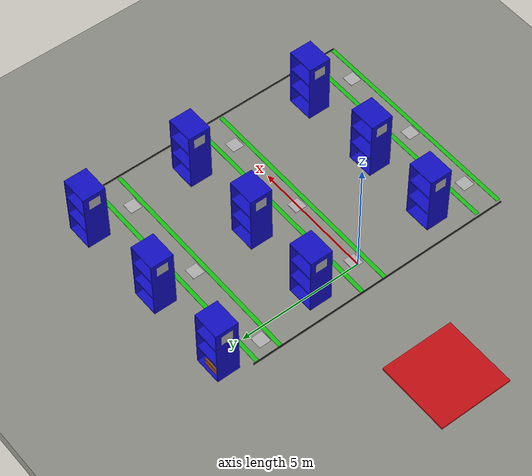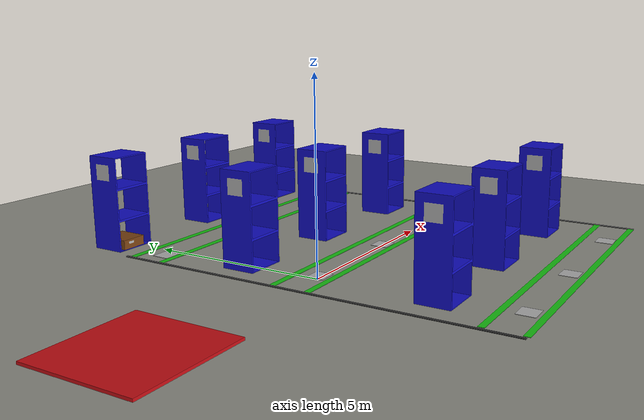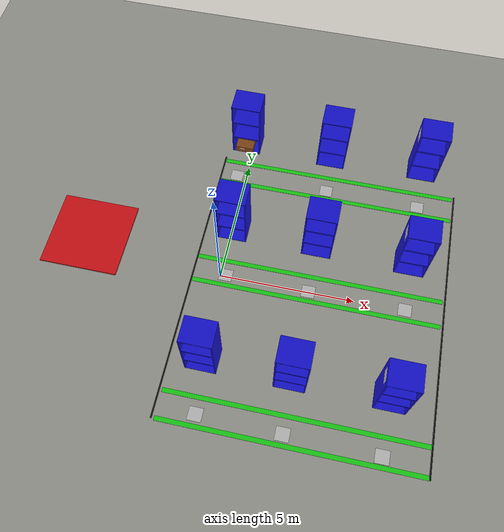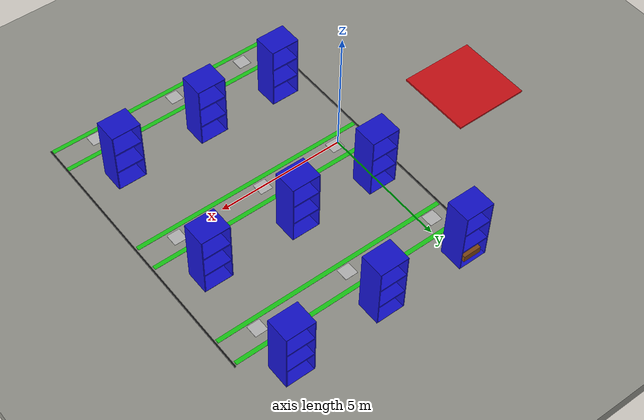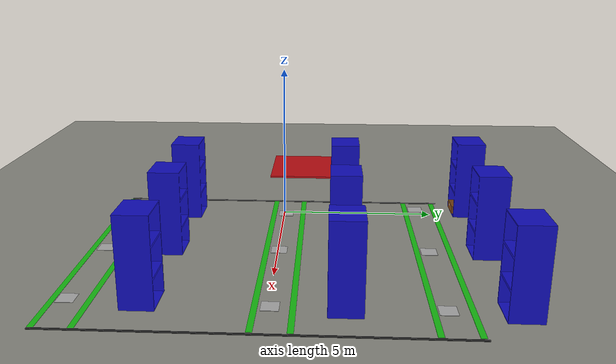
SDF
<sdf version="1.7">
 <world name="default">
  <light name="sun" type="directional">
   <pose>0 0 10 0 -0 0</pose>
   <diffuse>0.8 0.8 0.8 1</diffuse>
   <specular>0.2 0.2 0.2 1</specular>
   <attenuation>
    <range>1000</range>
    <constant>0.9</constant>
    <linear>0.01</linear>
    <quadratic>0.001</quadratic>
   </attenuation>
   <direction>-0.5 0.1 -0.9</direction>
   <spot><inner_angle>0</inner_angle><outer_angle>0</outer_angle><falloff>0</falloff></spot>
  </light>
  <model name="ground_plane">
   <static>1</static>
   <link name="link">
    <collision name="collision">
     <geometry><plane><normal>0 0 1</normal><size>100 100</size></plane></geometry>
     <surface>
      <contact><collide_bitmask>65535</collide_bitmask></contact>
      <friction><ode><mu>100</mu><mu2>50</mu2></ode></friction>
     </surface>
    </collision>
    <visual name="visual">
     <cast_shadows>0</cast_shadows>
     <geometry><plane><normal>0 0 1</normal><size>100 100</size></plane></geometry>
     <material>
      <script><uri>file://media/materials/scripts/gazebo.material</uri><name>Gazebo/Grey</name></script>
     </material>
    </visual>
   </link>
  </model>
  <gravity>0 0 -9.8</gravity>
  <magnetic_field>6e-06 2.3e-05 -4.2e-05</magnetic_field>
  <atmosphere type="adiabatic"/>
  <physics type="ode">
   <max_step_size>0.001</max_step_size>
   <real_time_factor>1</real_time_factor>
   <real_time_update_rate>1000</real_time_update_rate>
  </physics>
  <scene><ambient>0.4 0.4 0.4 1</ambient><background>0.7 0.7 0.7 1</background><shadows>1</shadows></scene>
  <spherical_coordinates>
   <surface_model>EARTH_WGS84</surface_model>
   <latitude_deg>0</latitude_deg>
   <longitude_deg>0</longitude_deg>
   <elevation>0</elevation>
   <heading_deg>0</heading_deg>
  </spherical_coordinates>
  <model name="floor">
   <link name="link_0">
    <inertial>
     <mass>1</mass>
     <inertia>
      <ixx>0.166667</ixx>
      <ixy>0</ixy>
      <ixz>0</ixz>
      <iyy>0.166667</iyy>
      <iyz>0</iyz>
      <izz>0.166667</izz>
     </inertia>
    </inertial>
    <visual name="visual">
     <geometry><mesh><uri>model://floor/resource/floor.dae</uri><scale>1 1 1</scale></mesh></geometry>
    </visual>
    <collision name="collision">
     <geometry><mesh><uri>model://floor/resource/floor.dae</uri><scale>1 1 1</scale></mesh></geometry>
     <surface>
      <friction>
       <ode><mu>1</mu><mu2>1</mu2><fdir1>0 0 0</fdir1><slip1>0</slip1><slip2>0</slip2></ode>
       <torsional>
        <coefficient>1</coefficient>
        <patch_radius>0</patch_radius>
        <surface_radius>0</surface_radius>
        <use_patch_radius>1</use_patch_radius>
        <ode><slip>0</slip></ode>
       </torsional>
      </friction>
      <bounce><restitution_coefficient>0</restitution_coefficient><threshold>1e+06</threshold></bounce>
      <contact>
       <collide_without_contact>0</collide_without_contact>
       <collide_without_contact_bitmask>1</collide_without_contact_bitmask>
       <collide_bitmask>1</collide_bitmask>
       <ode>
        <soft_cfm>0</soft_cfm>
        <soft_erp>0.2</soft_erp>
        <kp>1e+13</kp>
        <kd>1</kd>
        <max_vel>0.01</max_vel>
        <min_depth>0</min_depth>
       </ode>
       <bullet>
        <split_impulse>1</split_impulse>
        <split_impulse_penetration_threshold>-0.01</split_impulse_penetration_threshold>
        <soft_cfm>0</soft_cfm>
        <soft_erp>0.2</soft_erp>
        <kp>1e+13</kp>
        <kd>1</kd>
       </bullet>
      </contact>
     </surface>
    </collision>
   </link>
   <static>1</static>
   <pose>-7.76872 12.4794 0 0 -0 0</pose>
  </model>
  <model name="drone_pad">
   <link name="link_0">
    <inertial>
     <mass>1</mass>
     <inertia>
      <ixx>0.166667</ixx>
      <ixy>0</ixy>
      <ixz>0</ixz>
      <iyy>0.166667</iyy>
      <iyz>0</iyz>
      <izz>0.166667</izz>
     </inertia>
    </inertial>
    <visual name="visual">
     <geometry><mesh><uri>model://drone_pad/resource/drone_pad.dae</uri><scale>1 1 1</scale></mesh></geometry>
    </visual>
    <collision name="collision">
     <geometry><mesh><uri>model://drone_pad/resource/drone_pad.dae</uri><scale>1 1 1</scale></mesh></geometry>
     <surface>
      <friction>
       <ode><mu>1</mu><mu2>1</mu2><fdir1>0 0 0</fdir1><slip1>0</slip1><slip2>0</slip2></ode>
       <torsional>
        <coefficient>1</coefficient>
        <patch_radius>0</patch_radius>
        <surface_radius>0</surface_radius>
        <use_patch_radius>1</use_patch_radius>
        <ode><slip>0</slip></ode>
       </torsional>
      </friction>
      <bounce><restitution_coefficient>0</restitution_coefficient><threshold>1e+06</threshold></bounce>
      <contact>
       <collide_without_contact>0</collide_without_contact>
       <collide_without_contact_bitmask>1</collide_without_contact_bitmask>
       <collide_bitmask>1</collide_bitmask>
       <ode>
        <soft_cfm>0</soft_cfm>
        <soft_erp>0.2</soft_erp>
        <kp>1e+13</kp>
        <kd>1</kd>
        <max_vel>0.01</max_vel>
        <min_depth>0</min_depth>
       </ode>
       <bullet>
        <split_impulse>1</split_impulse>
        <split_impulse_penetration_threshold>-0.01</split_impulse_penetration_threshold>
        <soft_cfm>0</soft_cfm>
        <soft_erp>0.2</soft_erp>
        <kp>1e+13</kp>
        <kd>1</kd>
       </bullet>
      </contact>
     </surface>
    </collision>
   </link>
   <static>1</static>
   <pose>-5.3209 0.661161 0 0 -0 0</pose>
  </model>
  <model name="shelf_r21">
   <link name="link_8">
    <inertial>
     <mass>1</mass>
     <inertia>
      <ixx>0.166667</ixx>
      <ixy>0</ixy>
      <ixz>0</ixz>
      <iyy>0.166667</iyy>
      <iyz>0</iyz>
      <izz>0.166667</izz>
     </inertia>
    </inertial>
    <pose>-0.013771 0.013787 0 0 -0 0</pose>
    <visual name="visual">
     <geometry><mesh><uri>model://shelf_r21/resource/shelf.dae</uri><scale>1 1 1</scale></mesh></geometry>
    </visual>
    <collision name="collision">
     <geometry><mesh><uri>model://shelf_r21/resource/shelf.dae</uri><scale>1 1 1</scale></mesh></geometry>
     <surface>
      <friction>
       <ode><mu>1</mu><mu2>1</mu2><fdir1>0 0 0</fdir1><slip1>0</slip1><slip2>0</slip2></ode>
       <torsional>
        <coefficient>1</coefficient>
        <patch_radius>0</patch_radius>
        <surface_radius>0</surface_radius>
        <use_patch_radius>1</use_patch_radius>
        <ode><slip>0</slip></ode>
       </torsional>
      </friction>
      <bounce><restitution_coefficient>0</restitution_coefficient><threshold>1e+06</threshold></bounce>
      <contact>
       <collide_without_contact>0</collide_without_contact>
       <collide_without_contact_bitmask>1</collide_without_contact_bitmask>
       <collide_bitmask>1</collide_bitmask>
       <ode>
        <soft_cfm>0</soft_cfm>
        <soft_erp>0.2</soft_erp>
        <kp>1e+13</kp>
        <kd>1</kd>
        <max_vel>0.01</max_vel>
        <min_depth>0</min_depth>
       </ode>
       <bullet>
        <split_impulse>1</split_impulse>
        <split_impulse_penetration_threshold>-0.01</split_impulse_penetration_threshold>
        <soft_cfm>0</soft_cfm>
        <soft_erp>0.2</soft_erp>
        <kp>1e+13</kp>
        <kd>1</kd>
       </bullet>
      </contact>
     </surface>
    </collision>
   </link>
   <static>1</static>
   <pose>0.13741 2.03842 0 0 -0 0</pose>
  </model>
  <model name="land_marking">
   <link name="link_6">
    <inertial>
     <mass>1</mass>
     <inertia>
      <ixx>0.166667</ixx>
      <ixy>0</ixy>
      <ixz>0</ixz>
      <iyy>0.166667</iyy>
      <iyz>0</iyz>
      <izz>0.166667</izz>
     </inertia>
    </inertial>
    <visual name="visual">
     <geometry>
      <mesh><uri>model://land_marking/resource/land_markings.dae</uri><scale>1 1 1</scale></mesh>
     </geometry>
    </visual>
    <collision name="collision">
     <geometry>
      <mesh><uri>model://land_marking/resource/land_markings.dae</uri><scale>1 1 1</scale></mesh>
     </geometry>
     <surface>
      <friction>
       <ode><mu>1</mu><mu2>1</mu2><fdir1>0 0 0</fdir1><slip1>0</slip1><slip2>0</slip2></ode>
       <torsional>
        <coefficient>1</coefficient>
        <patch_radius>0</patch_radius>
        <surface_radius>0</surface_radius>
        <use_patch_radius>1</use_patch_radius>
        <ode><slip>0</slip></ode>
       </torsional>
      </friction>
      <bounce><restitution_coefficient>0</restitution_coefficient><threshold>1e+06</threshold></bounce>
      <contact>
       <collide_without_contact>0</collide_without_contact>
       <collide_without_contact_bitmask>1</collide_without_contact_bitmask>
       <collide_bitmask>1</collide_bitmask>
       <ode>
        <soft_cfm>0</soft_cfm>
        <soft_erp>0.2</soft_erp>
        <kp>1e+13</kp>
        <kd>1</kd>
        <max_vel>0.01</max_vel>
        <min_depth>0</min_depth>
       </ode>
       <bullet>
        <split_impulse>1</split_impulse>
        <split_impulse_penetration_threshold>-0.01</split_impulse_penetration_threshold>
        <soft_cfm>0</soft_cfm>
        <soft_erp>0.2</soft_erp>
        <kp>1e+13</kp>
        <kd>1</kd>
       </bullet>
      </contact>
     </surface>
    </collision>
   </link>
   <static>1</static>
   <pose>3.62373 -5.20062 0 0 -0 0</pose>
  </model>
  <model name="shelf_r11">
   <link name="link_8">
    <inertial>
     <mass>1</mass>
     <inertia>
      <ixx>0.166667</ixx>
      <ixy>0</ixy>
      <ixz>0</ixz>
      <iyy>0.166667</iyy>
      <iyz>0</iyz>
      <izz>0.166667</izz>
     </inertia>
    </inertial>
    <pose>-0.013771 0.013787 0 0 -0 0</pose>
    <visual name="visual">
     <geometry><mesh><uri>model://shelf_r11/resource/shelf.dae</uri><scale>1 1 1</scale></mesh></geometry>
    </visual>
    <collision name="collision">
     <geometry><mesh><uri>model://shelf_r11/resource/shelf.dae</uri><scale>1 1 1</scale></mesh></geometry>
     <surface>
      <friction>
       <ode><mu>1</mu><mu2>1</mu2><fdir1>0 0 0</fdir1><slip1>0</slip1><slip2>0</slip2></ode>
       <torsional>
        <coefficient>1</coefficient>
        <patch_radius>0</patch_radius>
        <surface_radius>0</surface_radius>
        <use_patch_radius>1</use_patch_radius>
        <ode><slip>0</slip></ode>
       </torsional>
      </friction>
      <bounce><restitution_coefficient>0</restitution_coefficient><threshold>1e+06</threshold></bounce>
      <contact>
       <collide_without_contact>0</collide_without_contact>
       <collide_without_contact_bitmask>1</collide_without_contact_bitmask>
       <collide_bitmask>1</collide_bitmask>
       <ode>
        <soft_cfm>0</soft_cfm>
        <soft_erp>0.2</soft_erp>
        <kp>1e+13</kp>
        <kd>1</kd>
        <max_vel>0.01</max_vel>
        <min_depth>0</min_depth>
       </ode>
       <bullet>
        <split_impulse>1</split_impulse>
        <split_impulse_penetration_threshold>-0.01</split_impulse_penetration_threshold>
        <soft_cfm>0</soft_cfm>
        <soft_erp>0.2</soft_erp>
        <kp>1e+13</kp>
        <kd>1</kd>
       </bullet>
      </contact>
     </surface>
    </collision>
   </link>
   <static>1</static>
   <pose>0.26082 -3.28482 0 0 -0 0</pose>
  </model>
  <model name="shelf_r12">
   <link name="link_8">
    <inertial>
     <mass>1</mass>
     <inertia>
      <ixx>0.166667</ixx>
      <ixy>0</ixy>
      <ixz>0</ixz>
      <iyy>0.166667</iyy>
      <iyz>0</iyz>
      <izz>0.166667</izz>
     </inertia>
    </inertial>
    <pose>-0.013771 0.013787 0 0 -0 0</pose>
    <visual name="visual">
     <geometry><mesh><uri>model://shelf_r12/resource/shelf.dae</uri><scale>1 1 1</scale></mesh></geometry>
    </visual>
    <collision name="collision">
     <geometry><mesh><uri>model://shelf_r12/resource/shelf.dae</uri><scale>1 1 1</scale></mesh></geometry>
     <surface>
      <friction>
       <ode><mu>1</mu><mu2>1</mu2><fdir1>0 0 0</fdir1><slip1>0</slip1><slip2>0</slip2></ode>
       <torsional>
        <coefficient>1</coefficient>
        <patch_radius>0</patch_radius>
        <surface_radius>0</surface_radius>
        <use_patch_radius>1</use_patch_radius>
        <ode><slip>0</slip></ode>
       </torsional>
      </friction>
      <bounce><restitution_coefficient>0</restitution_coefficient><threshold>1e+06</threshold></bounce>
      <contact>
       <collide_without_contact>0</collide_without_contact>
       <collide_without_contact_bitmask>1</collide_without_contact_bitmask>
       <collide_bitmask>1</collide_bitmask>
       <ode>
        <soft_cfm>0</soft_cfm>
        <soft_erp>0.2</soft_erp>
        <kp>1e+13</kp>
        <kd>1</kd>
        <max_vel>0.01</max_vel>
        <min_depth>0</min_depth>
       </ode>
       <bullet>
        <split_impulse>1</split_impulse>
        <split_impulse_penetration_threshold>-0.01</split_impulse_penetration_threshold>
        <soft_cfm>0</soft_cfm>
        <soft_erp>0.2</soft_erp>
        <kp>1e+13</kp>
        <kd>1</kd>
       </bullet>
      </contact>
     </surface>
    </collision>
   </link>
   <static>1</static>
   <pose>3.37641 -3.30007 0 0 -0 0</pose>
  </model>
  <model name="shelf_r13">
   <link name="link_8">
    <inertial>
     <mass>1</mass>
     <inertia>
      <ixx>0.166667</ixx>
      <ixy>0</ixy>
      <ixz>0</ixz>
      <iyy>0.166667</iyy>
      <iyz>0</iyz>
      <izz>0.166667</izz>
     </inertia>
    </inertial>
    <pose>-0.013771 0.013787 0 0 -0 0</pose>
    <visual name="visual">
     <geometry><mesh><uri>model://shelf_r13/resource/shelf.dae</uri><scale>1 1 1</scale></mesh></geometry>
    </visual>
    <collision name="collision">
     <geometry><mesh><uri>model://shelf_r13/resource/shelf.dae</uri><scale>1 1 1</scale></mesh></geometry>
     <surface>
      <friction>
       <ode><mu>1</mu><mu2>1</mu2><fdir1>0 0 0</fdir1><slip1>0</slip1><slip2>0</slip2></ode>
       <torsional>
        <coefficient>1</coefficient>
        <patch_radius>0</patch_radius>
        <surface_radius>0</surface_radius>
        <use_patch_radius>1</use_patch_radius>
        <ode><slip>0</slip></ode>
       </torsional>
      </friction>
      <bounce><restitution_coefficient>0</restitution_coefficient><threshold>1e+06</threshold></bounce>
      <contact>
       <collide_without_contact>0</collide_without_contact>
       <collide_without_contact_bitmask>1</collide_without_contact_bitmask>
       <collide_bitmask>1</collide_bitmask>
       <ode>
        <soft_cfm>0</soft_cfm>
        <soft_erp>0.2</soft_erp>
        <kp>1e+13</kp>
        <kd>1</kd>
        <max_vel>0.01</max_vel>
        <min_depth>0</min_depth>
       </ode>
       <bullet>
        <split_impulse>1</split_impulse>
        <split_impulse_penetration_threshold>-0.01</split_impulse_penetration_threshold>
        <soft_cfm>0</soft_cfm>
        <soft_erp>0.2</soft_erp>
        <kp>1e+13</kp>
        <kd>1</kd>
       </bullet>
      </contact>
     </surface>
    </collision>
   </link>
   <static>1</static>
   <pose>6.7997 -3.30957 0 0 -0 0</pose>
  </model>
  <model name="land_marking_0">
   <link name="link_6">
    <inertial>
     <mass>1</mass>
     <inertia>
      <ixx>0.166667</ixx>
      <ixy>0</ixy>
      <ixz>0</ixz>
      <iyy>0.166667</iyy>
      <iyz>0</iyz>
      <izz>0.166667</izz>
     </inertia>
    </inertial>
    <visual name="visual">
     <geometry>
      <mesh><uri>model://land_marking/resource/land_markings.dae</uri><scale>1 1 1</scale></mesh>
     </geometry>
    </visual>
    <collision name="collision">
     <geometry>
      <mesh><uri>model://land_marking/resource/land_markings.dae</uri><scale>1 1 1</scale></mesh>
     </geometry>
     <surface>
      <friction>
       <ode><mu>1</mu><mu2>1</mu2><fdir1>0 0 0</fdir1><slip1>0</slip1><slip2>0</slip2></ode>
       <torsional>
        <coefficient>1</coefficient>
        <patch_radius>0</patch_radius>
        <surface_radius>0</surface_radius>
        <use_patch_radius>1</use_patch_radius>
        <ode><slip>0</slip></ode>
       </torsional>
      </friction>
      <bounce><restitution_coefficient>0</restitution_coefficient><threshold>1e+06</threshold></bounce>
      <contact>
       <collide_without_contact>0</collide_without_contact>
       <collide_without_contact_bitmask>1</collide_without_contact_bitmask>
       <collide_bitmask>1</collide_bitmask>
       <ode>
        <soft_cfm>0</soft_cfm>
        <soft_erp>0.2</soft_erp>
        <kp>1e+13</kp>
        <kd>1</kd>
        <max_vel>0.01</max_vel>
        <min_depth>0</min_depth>
       </ode>
       <bullet>
        <split_impulse>1</split_impulse>
        <split_impulse_penetration_threshold>-0.01</split_impulse_penetration_threshold>
        <soft_cfm>0</soft_cfm>
        <soft_erp>0.2</soft_erp>
        <kp>1e+13</kp>
        <kd>1</kd>
       </bullet>
      </contact>
     </surface>
    </collision>
   </link>
   <static>1</static>
   <pose>3.55848 0.08949 0 0 -0 0</pose>
  </model>
  <model name="shelf_r22">
   <link name="link_8">
    <inertial>
     <mass>1</mass>
     <inertia>
      <ixx>0.166667</ixx>
      <ixy>0</ixy>
      <ixz>0</ixz>
      <iyy>0.166667</iyy>
      <iyz>0</iyz>
      <izz>0.166667</izz>
     </inertia>
    </inertial>
    <pose>-0.013771 0.013787 0 0 -0 0</pose>
    <visual name="visual">
     <geometry><mesh><uri>model://shelf_r22/resource/shelf.dae</uri><scale>1 1 1</scale></mesh></geometry>
    </visual>
    <collision name="collision">
     <geometry><mesh><uri>model://shelf_r22/resource/shelf.dae</uri><scale>1 1 1</scale></mesh></geometry>
     <surface>
      <friction>
       <ode><mu>1</mu><mu2>1</mu2><fdir1>0 0 0</fdir1><slip1>0</slip1><slip2>0</slip2></ode>
       <torsional>
        <coefficient>1</coefficient>
        <patch_radius>0</patch_radius>
        <surface_radius>0</surface_radius>
        <use_patch_radius>1</use_patch_radius>
        <ode><slip>0</slip></ode>
       </torsional>
      </friction>
      <bounce><restitution_coefficient>0</restitution_coefficient><threshold>1e+06</threshold></bounce>
      <contact>
       <collide_without_contact>0</collide_without_contact>
       <collide_without_contact_bitmask>1</collide_without_contact_bitmask>
       <collide_bitmask>1</collide_bitmask>
       <ode>
        <soft_cfm>0</soft_cfm>
        <soft_erp>0.2</soft_erp>
        <kp>1e+13</kp>
        <kd>1</kd>
        <max_vel>0.01</max_vel>
        <min_depth>0</min_depth>
       </ode>
       <bullet>
        <split_impulse>1</split_impulse>
        <split_impulse_penetration_threshold>-0.01</split_impulse_penetration_threshold>
        <soft_cfm>0</soft_cfm>
        <soft_erp>0.2</soft_erp>
        <kp>1e+13</kp>
        <kd>1</kd>
       </bullet>
      </contact>
     </surface>
    </collision>
   </link>
   <static>1</static>
   <pose>3.40399 2.00111 0 0 -0 0</pose>
  </model>
  <model name="shelf_r23">
   <link name="link_8">
    <inertial>
     <mass>1</mass>
     <inertia>
      <ixx>0.166667</ixx>
      <ixy>0</ixy>
      <ixz>0</ixz>
      <iyy>0.166667</iyy>
      <iyz>0</iyz>
      <izz>0.166667</izz>
     </inertia>
    </inertial>
    <pose>-0.013771 0.013787 0 0 -0 0</pose>
    <visual name="visual">
     <geometry><mesh><uri>model://shelf_r23/resource/shelf.dae</uri><scale>1 1 1</scale></mesh></geometry>
    </visual>
    <collision name="collision">
     <geometry><mesh><uri>model://shelf_r23/resource/shelf.dae</uri><scale>1 1 1</scale></mesh></geometry>
     <surface>
      <friction>
       <ode><mu>1</mu><mu2>1</mu2><fdir1>0 0 0</fdir1><slip1>0</slip1><slip2>0</slip2></ode>
       <torsional>
        <coefficient>1</coefficient>
        <patch_radius>0</patch_radius>
        <surface_radius>0</surface_radius>
        <use_patch_radius>1</use_patch_radius>
        <ode><slip>0</slip></ode>
       </torsional>
      </friction>
      <bounce><restitution_coefficient>0</restitution_coefficient><threshold>1e+06</threshold></bounce>
      <contact>
       <collide_without_contact>0</collide_without_contact>
       <collide_without_contact_bitmask>1</collide_without_contact_bitmask>
       <collide_bitmask>1</collide_bitmask>
       <ode>
        <soft_cfm>0</soft_cfm>
        <soft_erp>0.2</soft_erp>
        <kp>1e+13</kp>
        <kd>1</kd>
        <max_vel>0.01</max_vel>
        <min_depth>0</min_depth>
       </ode>
       <bullet>
        <split_impulse>1</split_impulse>
        <split_impulse_penetration_threshold>-0.01</split_impulse_penetration_threshold>
        <soft_cfm>0</soft_cfm>
        <soft_erp>0.2</soft_erp>
        <kp>1e+13</kp>
        <kd>1</kd>
       </bullet>
      </contact>
     </surface>
    </collision>
   </link>
   <static>1</static>
   <pose>6.91472 1.95867 0 0 -0 0</pose>
  </model>
  <model name="land_marking_1">
   <link name="link_6">
    <inertial>
     <mass>1</mass>
     <inertia>
      <ixx>0.166667</ixx>
      <ixy>0</ixy>
      <ixz>0</ixz>
      <iyy>0.166667</iyy>
      <iyz>0</iyz>
      <izz>0.166667</izz>
     </inertia>
    </inertial>
    <visual name="visual">
     <geometry>
      <mesh><uri>model://land_marking/resource/land_markings.dae</uri><scale>1 1 1</scale></mesh>
     </geometry>
    </visual>
    <collision name="collision">
     <geometry>
      <mesh><uri>model://land_marking/resource/land_markings.dae</uri><scale>1 1 1</scale></mesh>
     </geometry>
     <surface>
      <friction>
       <ode><mu>1</mu><mu2>1</mu2><fdir1>0 0 0</fdir1><slip1>0</slip1><slip2>0</slip2></ode>
       <torsional>
        <coefficient>1</coefficient>
        <patch_radius>0</patch_radius>
        <surface_radius>0</surface_radius>
        <use_patch_radius>1</use_patch_radius>
        <ode><slip>0</slip></ode>
       </torsional>
      </friction>
      <bounce><restitution_coefficient>0</restitution_coefficient><threshold>1e+06</threshold></bounce>
      <contact>
       <collide_without_contact>0</collide_without_contact>
       <collide_without_contact_bitmask>1</collide_without_contact_bitmask>
       <collide_bitmask>1</collide_bitmask>
       <ode>
        <soft_cfm>0</soft_cfm>
        <soft_erp>0.2</soft_erp>
        <kp>1e+13</kp>
        <kd>1</kd>
        <max_vel>0.01</max_vel>
        <min_depth>0</min_depth>
       </ode>
       <bullet>
        <split_impulse>1</split_impulse>
        <split_impulse_penetration_threshold>-0.01</split_impulse_penetration_threshold>
        <soft_cfm>0</soft_cfm>
        <soft_erp>0.2</soft_erp>
        <kp>1e+13</kp>
        <kd>1</kd>
       </bullet>
      </contact>
     </surface>
    </collision>
   </link>
   <static>1</static>
   <pose>3.56387 4.63059 0 0 -0 0</pose>
  </model>
  <model name="shelf_r31">
   <link name="link_8">
    <inertial>
     <mass>1</mass>
     <inertia>
      <ixx>0.166667</ixx>
      <ixy>0</ixy>
      <ixz>0</ixz>
      <iyy>0.166667</iyy>
      <iyz>0</iyz>
      <izz>0.166667</izz>
     </inertia>
    </inertial>
    <pose>-0.013771 0.013787 0 0 -0 0</pose>
    <visual name="visual">
     <geometry><mesh><uri>model://shelf_r31/resource/shelf.dae</uri><scale>1 1 1</scale></mesh></geometry>
    </visual>
    <collision name="collision">
     <geometry><mesh><uri>model://shelf_r31/resource/shelf.dae</uri><scale>1 1 1</scale></mesh></geometry>
     <surface>
      <friction>
       <ode><mu>1</mu><mu2>1</mu2><fdir1>0 0 0</fdir1><slip1>0</slip1><slip2>0</slip2></ode>
       <torsional>
        <coefficient>1</coefficient>
        <patch_radius>0</patch_radius>
        <surface_radius>0</surface_radius>
        <use_patch_radius>1</use_patch_radius>
        <ode><slip>0</slip></ode>
       </torsional>
      </friction>
      <bounce><restitution_coefficient>0</restitution_coefficient><threshold>1e+06</threshold></bounce>
      <contact>
       <collide_without_contact>0</collide_without_contact>
       <collide_without_contact_bitmask>1</collide_without_contact_bitmask>
       <collide_bitmask>1</collide_bitmask>
       <ode>
        <soft_cfm>0</soft_cfm>
        <soft_erp>0.2</soft_erp>
        <kp>1e+13</kp>
        <kd>1</kd>
        <max_vel>0.01</max_vel>
        <min_depth>0</min_depth>
       </ode>
       <bullet>
        <split_impulse>1</split_impulse>
        <split_impulse_penetration_threshold>-0.01</split_impulse_penetration_threshold>
        <soft_cfm>0</soft_cfm>
        <soft_erp>0.2</soft_erp>
        <kp>1e+13</kp>
        <kd>1</kd>
       </bullet>
      </contact>
     </surface>
    </collision>
   </link>
   <static>1</static>
   <pose>-0.211833 6.22353 0 0 -0 0</pose>
  </model>
  <model name="shelf_r32">
   <link name="link_8">
    <inertial>
     <mass>1</mass>
     <inertia>
      <ixx>0.166667</ixx>
      <ixy>0</ixy>
      <ixz>0</ixz>
      <iyy>0.166667</iyy>
      <iyz>0</iyz>
      <izz>0.166667</izz>
     </inertia>
    </inertial>
    <pose>-0.013771 0.013787 0 0 -0 0</pose>
    <visual name="visual">
     <geometry><mesh><uri>model://shelf_r32/resource/shelf.dae</uri><scale>1 1 1</scale></mesh></geometry>
    </visual>
    <collision name="collision">
     <geometry><mesh><uri>model://shelf_r32/resource/shelf.dae</uri><scale>1 1 1</scale></mesh></geometry>
     <surface>
      <friction>
       <ode><mu>1</mu><mu2>1</mu2><fdir1>0 0 0</fdir1><slip1>0</slip1><slip2>0</slip2></ode>
       <torsional>
        <coefficient>1</coefficient>
        <patch_radius>0</patch_radius>
        <surface_radius>0</surface_radius>
        <use_patch_radius>1</use_patch_radius>
        <ode><slip>0</slip></ode>
       </torsional>
      </friction>
      <bounce><restitution_coefficient>0</restitution_coefficient><threshold>1e+06</threshold></bounce>
      <contact>
       <collide_without_contact>0</collide_without_contact>
       <collide_without_contact_bitmask>1</collide_without_contact_bitmask>
       <collide_bitmask>1</collide_bitmask>
       <ode>
        <soft_cfm>0</soft_cfm>
        <soft_erp>0.2</soft_erp>
        <kp>1e+13</kp>
        <kd>1</kd>
        <max_vel>0.01</max_vel>
        <min_depth>0</min_depth>
       </ode>
       <bullet>
        <split_impulse>1</split_impulse>
        <split_impulse_penetration_threshold>-0.01</split_impulse_penetration_threshold>
        <soft_cfm>0</soft_cfm>
        <soft_erp>0.2</soft_erp>
        <kp>1e+13</kp>
        <kd>1</kd>
       </bullet>
      </contact>
     </surface>
    </collision>
   </link>
   <static>1</static>
   <pose>3.28028 6.22271 0 0 -0 0</pose>
  </model>
  <model name="shelf_r33">
   <link name="link_8">
    <inertial>
     <mass>1</mass>
     <inertia>
      <ixx>0.166667</ixx>
      <ixy>0</ixy>
      <ixz>0</ixz>
      <iyy>0.166667</iyy>
      <iyz>0</iyz>
      <izz>0.166667</izz>
     </inertia>
    </inertial>
    <pose>-0.013771 0.013787 0 0 -0 0</pose>
    <visual name="visual">
     <geometry><mesh><uri>model://shelf_r33/resource/shelf.dae</uri><scale>1 1 1</scale></mesh></geometry>
    </visual>
    <collision name="collision">
     <geometry><mesh><uri>model://shelf_r33/resource/shelf.dae</uri><scale>1 1 1</scale></mesh></geometry>
     <surface>
      <friction>
       <ode><mu>1</mu><mu2>1</mu2><fdir1>0 0 0</fdir1><slip1>0</slip1><slip2>0</slip2></ode>
       <torsional>
        <coefficient>1</coefficient>
        <patch_radius>0</patch_radius>
        <surface_radius>0</surface_radius>
        <use_patch_radius>1</use_patch_radius>
        <ode><slip>0</slip></ode>
       </torsional>
      </friction>
      <bounce><restitution_coefficient>0</restitution_coefficient><threshold>1e+06</threshold></bounce>
      <contact>
       <collide_without_contact>0</collide_without_contact>
       <collide_without_contact_bitmask>1</collide_without_contact_bitmask>
       <collide_bitmask>1</collide_bitmask>
       <ode>
        <soft_cfm>0</soft_cfm>
        <soft_erp>0.2</soft_erp>
        <kp>1e+13</kp>
        <kd>1</kd>
        <max_vel>0.01</max_vel>
        <min_depth>0</min_depth>
       </ode>
       <bullet>
        <split_impulse>1</split_impulse>
        <split_impulse_penetration_threshold>-0.01</split_impulse_penetration_threshold>
        <soft_cfm>0</soft_cfm>
        <soft_erp>0.2</soft_erp>
        <kp>1e+13</kp>
        <kd>1</kd>
       </bullet>
      </contact>
     </surface>
    </collision>
   </link>
   <static>1</static>
   <pose>6.9636 6.34557 0 0 -0 0</pose>
  </model>
  <model name="boundary">
   <link name="link_2">
    <inertial>
     <mass>1</mass>
     <inertia>
      <ixx>0.166667</ixx>
      <ixy>0</ixy>
      <ixz>0</ixz>
      <iyy>0.166667</iyy>
      <iyz>0</iyz>
      <izz>0.166667</izz>
     </inertia>
    </inertial>
    <pose>0.031569 -0.024058 0 0 -0 0</pose>
    <visual name="visual">
     <geometry><mesh><uri>model://boundary/resource/boundary.dae</uri><scale>1 1 1</scale></mesh></geometry>
    </visual>
    <collision name="collision">
     <geometry><mesh><uri>model://boundary/resource/boundary.dae</uri><scale>1 1 1</scale></mesh></geometry>
     <surface>
      <friction>
       <ode><mu>1</mu><mu2>1</mu2><fdir1>0 0 0</fdir1><slip1>0</slip1><slip2>0</slip2></ode>
       <torsional>
        <coefficient>1</coefficient>
        <patch_radius>0</patch_radius>
        <surface_radius>0</surface_radius>
        <use_patch_radius>1</use_patch_radius>
        <ode><slip>0</slip></ode>
       </torsional>
      </friction>
      <bounce><restitution_coefficient>0</restitution_coefficient><threshold>1e+06</threshold></bounce>
      <contact>
       <collide_without_contact>0</collide_without_contact>
       <collide_without_contact_bitmask>1</collide_without_contact_bitmask>
       <collide_bitmask>1</collide_bitmask>
       <ode>
        <soft_cfm>0</soft_cfm>
        <soft_erp>0.2</soft_erp>
        <kp>1e+13</kp>
        <kd>1</kd>
        <max_vel>0.01</max_vel>
        <min_depth>0</min_depth>
       </ode>
       <bullet>
        <split_impulse>1</split_impulse>
        <split_impulse_penetration_threshold>-0.01</split_impulse_penetration_threshold>
        <soft_cfm>0</soft_cfm>
        <soft_erp>0.2</soft_erp>
        <kp>1e+13</kp>
        <kd>1</kd>
       </bullet>
      </contact>
     </surface>
    </collision>
   </link>
   <static>1</static>
   <pose>8.2288 -0.180652 0 0 -0 0</pose>
  </model>
  <model name="boundary_0">
   <link name="link_2">
    <inertial>
     <mass>1</mass>
     <inertia>
      <ixx>0.166667</ixx>
      <ixy>0</ixy>
      <ixz>0</ixz>
      <iyy>0.166667</iyy>
      <iyz>0</iyz>
      <izz>0.166667</izz>
     </inertia>
    </inertial>
    <pose>0.031569 -0.024058 0 0 -0 0</pose>
    <visual name="visual">
     <geometry><mesh><uri>model://boundary/resource/boundary.dae</uri><scale>1 1 1</scale></mesh></geometry>
    </visual>
    <collision name="collision">
     <geometry><mesh><uri>model://boundary/resource/boundary.dae</uri><scale>1 1 1</scale></mesh></geometry>
     <surface>
      <friction>
       <ode><mu>1</mu><mu2>1</mu2><fdir1>0 0 0</fdir1><slip1>0</slip1><slip2>0</slip2></ode>
       <torsional>
        <coefficient>1</coefficient>
        <patch_radius>0</patch_radius>
        <surface_radius>0</surface_radius>
        <use_patch_radius>1</use_patch_radius>
        <ode><slip>0</slip></ode>
       </torsional>
      </friction>
      <bounce><restitution_coefficient>0</restitution_coefficient><threshold>1e+06</threshold></bounce>
      <contact>
       <collide_without_contact>0</collide_without_contact>
       <collide_without_contact_bitmask>1</collide_without_contact_bitmask>
       <collide_bitmask>1</collide_bitmask>
       <ode>
        <soft_cfm>0</soft_cfm>
        <soft_erp>0.2</soft_erp>
        <kp>1e+13</kp>
        <kd>1</kd>
        <max_vel>0.01</max_vel>
        <min_depth>0</min_depth>
       </ode>
       <bullet>
        <split_impulse>1</split_impulse>
        <split_impulse_penetration_threshold>-0.01</split_impulse_penetration_threshold>
        <soft_cfm>0</soft_cfm>
        <soft_erp>0.2</soft_erp>
        <kp>1e+13</kp>
        <kd>1</kd>
       </bullet>
      </contact>
     </surface>
    </collision>
   </link>
   <static>1</static>
   <pose>-1.06881 -0.134691 0 0 -0 0</pose>
  </model>
  <model name="aruco_r_21">
   <link name="link">
    <inertial>
     <mass>1</mass>
     <inertia>
      <ixx>0.166667</ixx>
      <ixy>0</ixy>
      <ixz>0</ixz>
      <iyy>0.166667</iyy>
      <iyz>0</iyz>
      <izz>0.166667</izz>
     </inertia>
    </inertial>
    <pose>-0.128287 0.135828 0 0 -0 0</pose>
    <visual name="visual">
     <geometry><mesh><uri>model://aruco_r_21/resource/21.dae</uri><scale>1 1 1</scale></mesh></geometry>
    </visual>
    <collision name="collision">
     <geometry><mesh><uri>model://aruco_r_21/resource/21.dae</uri><scale>1 1 1</scale></mesh></geometry>
     <surface>
      <friction>
       <ode><mu>1</mu><mu2>1</mu2><fdir1>0 0 0</fdir1><slip1>0</slip1><slip2>0</slip2></ode>
       <torsional>
        <coefficient>1</coefficient>
        <patch_radius>0</patch_radius>
        <surface_radius>0</surface_radius>
        <use_patch_radius>1</use_patch_radius>
        <ode><slip>0</slip></ode>
       </torsional>
      </friction>
      <bounce><restitution_coefficient>0</restitution_coefficient><threshold>1e+06</threshold></bounce>
      <contact>
       <collide_without_contact>0</collide_without_contact>
       <collide_without_contact_bitmask>1</collide_without_contact_bitmask>
       <collide_bitmask>1</collide_bitmask>
       <ode>
        <soft_cfm>0</soft_cfm>
        <soft_erp>0.2</soft_erp>
        <kp>1e+13</kp>
        <kd>1</kd>
        <max_vel>0.01</max_vel>
        <min_depth>0</min_depth>
       </ode>
       <bullet>
        <split_impulse>1</split_impulse>
        <split_impulse_penetration_threshold>-0.01</split_impulse_penetration_threshold>
        <soft_cfm>0</soft_cfm>
        <soft_erp>0.2</soft_erp>
        <kp>1e+13</kp>
        <kd>1</kd>
       </bullet>
      </contact>
     </surface>
    </collision>
   </link>
   <static>0</static>
   <pose>0.313236 -0.063052 -0.059739 0 -0 0</pose>
  </model>
  <model name="aruco_r_22">
   <link name="link">
    <inertial>
     <mass>1</mass>
     <inertia>
      <ixx>0.166667</ixx>
      <ixy>0</ixy>
      <ixz>0</ixz>
      <iyy>0.166667</iyy>
      <iyz>0</iyz>
      <izz>0.166667</izz>
     </inertia>
    </inertial>
    <pose>-0.128287 0.135828 0 0 -0 0</pose>
    <visual name="visual">
     <geometry><mesh><uri>model://aruco_r_22/resource/22.dae</uri><scale>1 1 1</scale></mesh></geometry>
    </visual>
    <collision name="collision">
     <geometry><mesh><uri>model://aruco_r_22/resource/22.dae</uri><scale>1 1 1</scale></mesh></geometry>
     <surface>
      <friction>
       <ode><mu>1</mu><mu2>1</mu2><fdir1>0 0 0</fdir1><slip1>0</slip1><slip2>0</slip2></ode>
       <torsional>
        <coefficient>1</coefficient>
        <patch_radius>0</patch_radius>
        <surface_radius>0</surface_radius>
        <use_patch_radius>1</use_patch_radius>
        <ode><slip>0</slip></ode>
       </torsional>
      </friction>
      <bounce><restitution_coefficient>0</restitution_coefficient><threshold>1e+06</threshold></bounce>
      <contact>
       <collide_without_contact>0</collide_without_contact>
       <collide_without_contact_bitmask>1</collide_without_contact_bitmask>
       <collide_bitmask>1</collide_bitmask>
       <ode>
        <soft_cfm>0</soft_cfm>
        <soft_erp>0.2</soft_erp>
        <kp>1e+13</kp>
        <kd>1</kd>
        <max_vel>0.01</max_vel>
        <min_depth>0</min_depth>
       </ode>
       <bullet>
        <split_impulse>1</split_impulse>
        <split_impulse_penetration_threshold>-0.01</split_impulse_penetration_threshold>
        <soft_cfm>0</soft_cfm>
        <soft_erp>0.2</soft_erp>
        <kp>1e+13</kp>
        <kd>1</kd>
       </bullet>
      </contact>
     </surface>
    </collision>
   </link>
   <static>0</static>
   <pose>3.43548 -0.089498 -0.059739 0 -0 0</pose>
  </model>
  <model name="aruco_r_23">
   <link name="link">
    <inertial>
     <mass>1</mass>
     <inertia>
      <ixx>0.166667</ixx>
      <ixy>0</ixy>
      <ixz>0</ixz>
      <iyy>0.166667</iyy>
      <iyz>0</iyz>
      <izz>0.166667</izz>
     </inertia>
    </inertial>
    <pose>-0.128287 0.135828 0 0 -0 0</pose>
    <visual name="visual">
     <geometry><mesh><uri>model://aruco_r_23/resource/23.dae</uri><scale>1 1 1</scale></mesh></geometry>
    </visual>
    <collision name="collision">
     <geometry><mesh><uri>model://aruco_r_23/resource/23.dae</uri><scale>1 1 1</scale></mesh></geometry>
     <surface>
      <friction>
       <ode><mu>1</mu><mu2>1</mu2><fdir1>0 0 0</fdir1><slip1>0</slip1><slip2>0</slip2></ode>
       <torsional>
        <coefficient>1</coefficient>
        <patch_radius>0</patch_radius>
        <surface_radius>0</surface_radius>
        <use_patch_radius>1</use_patch_radius>
        <ode><slip>0</slip></ode>
       </torsional>
      </friction>
      <bounce><restitution_coefficient>0</restitution_coefficient><threshold>1e+06</threshold></bounce>
      <contact>
       <collide_without_contact>0</collide_without_contact>
       <collide_without_contact_bitmask>1</collide_without_contact_bitmask>
       <collide_bitmask>1</collide_bitmask>
       <ode>
        <soft_cfm>0</soft_cfm>
        <soft_erp>0.2</soft_erp>
        <kp>1e+13</kp>
        <kd>1</kd>
        <max_vel>0.01</max_vel>
        <min_depth>0</min_depth>
       </ode>
       <bullet>
        <split_impulse>1</split_impulse>
        <split_impulse_penetration_threshold>-0.01</split_impulse_penetration_threshold>
        <soft_cfm>0</soft_cfm>
        <soft_erp>0.2</soft_erp>
        <kp>1e+13</kp>
        <kd>1</kd>
       </bullet>
      </contact>
     </surface>
    </collision>
   </link>
   <static>0</static>
   <pose>6.99056 -0.073917 -0.059739 0 -0 0</pose>
  </model>
  <model name="aruco_r_11">
   <link name="link">
    <inertial>
     <mass>1</mass>
     <inertia>
      <ixx>0.166667</ixx>
      <ixy>0</ixy>
      <ixz>0</ixz>
      <iyy>0.166667</iyy>
      <iyz>0</iyz>
      <izz>0.166667</izz>
     </inertia>
    </inertial>
    <pose>-0.128287 0.135828 0 0 -0 0</pose>
    <visual name="visual">
     <geometry><mesh><uri>model://aruco_r_11/resource/11.dae</uri><scale>1 1 1</scale></mesh></geometry>
    </visual>
    <collision name="collision">
     <geometry><mesh><uri>model://aruco_r_11/resource/11.dae</uri><scale>1 1 1</scale></mesh></geometry>
     <surface>
      <friction>
       <ode><mu>1</mu><mu2>1</mu2><fdir1>0 0 0</fdir1><slip1>0</slip1><slip2>0</slip2></ode>
       <torsional>
        <coefficient>1</coefficient>
        <patch_radius>0</patch_radius>
        <surface_radius>0</surface_radius>
        <use_patch_radius>1</use_patch_radius>
        <ode><slip>0</slip></ode>
       </torsional>
      </friction>
      <bounce><restitution_coefficient>0</restitution_coefficient><threshold>1e+06</threshold></bounce>
      <contact>
       <collide_without_contact>0</collide_without_contact>
       <collide_without_contact_bitmask>1</collide_without_contact_bitmask>
       <collide_bitmask>1</collide_bitmask>
       <ode>
        <soft_cfm>0</soft_cfm>
        <soft_erp>0.2</soft_erp>
        <kp>1e+13</kp>
        <kd>1</kd>
        <max_vel>0.01</max_vel>
        <min_depth>0</min_depth>
       </ode>
       <bullet>
        <split_impulse>1</split_impulse>
        <split_impulse_penetration_threshold>-0.01</split_impulse_penetration_threshold>
        <soft_cfm>0</soft_cfm>
        <soft_erp>0.2</soft_erp>
        <kp>1e+13</kp>
        <kd>1</kd>
       </bullet>
      </contact>
     </surface>
    </collision>
   </link>
   <static>0</static>
   <pose>0.512344 -5.34822 -0.059739 0 -0 0</pose>
  </model>
  <model name="aruco_r_12">
   <link name="link">
    <inertial>
     <mass>1</mass>
     <inertia>
      <ixx>0.166667</ixx>
      <ixy>0</ixy>
      <ixz>0</ixz>
      <iyy>0.166667</iyy>
      <iyz>0</iyz>
      <izz>0.166667</izz>
     </inertia>
    </inertial>
    <pose>-0.128287 0.135828 0 0 -0 0</pose>
    <visual name="visual">
     <geometry><mesh><uri>model://aruco_r_12/resource/12.dae</uri><scale>1 1 1</scale></mesh></geometry>
    </visual>
    <collision name="collision">
     <geometry><mesh><uri>model://aruco_r_12/resource/12.dae</uri><scale>1 1 1</scale></mesh></geometry>
     <surface>
      <friction>
       <ode><mu>1</mu><mu2>1</mu2><fdir1>0 0 0</fdir1><slip1>0</slip1><slip2>0</slip2></ode>
       <torsional>
        <coefficient>1</coefficient>
        <patch_radius>0</patch_radius>
        <surface_radius>0</surface_radius>
        <use_patch_radius>1</use_patch_radius>
        <ode><slip>0</slip></ode>
       </torsional>
      </friction>
      <bounce><restitution_coefficient>0</restitution_coefficient><threshold>1e+06</threshold></bounce>
      <contact>
       <collide_without_contact>0</collide_without_contact>
       <collide_without_contact_bitmask>1</collide_without_contact_bitmask>
       <collide_bitmask>1</collide_bitmask>
       <ode>
        <soft_cfm>0</soft_cfm>
        <soft_erp>0.2</soft_erp>
        <kp>1e+13</kp>
        <kd>1</kd>
        <max_vel>0.01</max_vel>
        <min_depth>0</min_depth>
       </ode>
       <bullet>
        <split_impulse>1</split_impulse>
        <split_impulse_penetration_threshold>-0.01</split_impulse_penetration_threshold>
        <soft_cfm>0</soft_cfm>
        <soft_erp>0.2</soft_erp>
        <kp>1e+13</kp>
        <kd>1</kd>
       </bullet>
      </contact>
     </surface>
    </collision>
   </link>
   <static>0</static>
   <pose>3.50061 -5.38504 -0.059739 0 -0 0</pose>
  </model>
  <model name="aruco_r_13">
   <link name="link">
    <inertial>
     <mass>1</mass>
     <inertia>
      <ixx>0.166667</ixx>
      <ixy>0</ixy>
      <ixz>0</ixz>
      <iyy>0.166667</iyy>
      <iyz>0</iyz>
      <izz>0.166667</izz>
     </inertia>
    </inertial>
    <pose>-0.128287 0.135828 0 0 -0 0</pose>
    <visual name="visual">
     <geometry><mesh><uri>model://aruco_r_13/resource/13.dae</uri><scale>1 1 1</scale></mesh></geometry>
    </visual>
    <collision name="collision">
     <geometry><mesh><uri>model://aruco_r_13/resource/13.dae</uri><scale>1 1 1</scale></mesh></geometry>
     <surface>
      <friction>
       <ode><mu>1</mu><mu2>1</mu2><fdir1>0 0 0</fdir1><slip1>0</slip1><slip2>0</slip2></ode>
       <torsional>
        <coefficient>1</coefficient>
        <patch_radius>0</patch_radius>
        <surface_radius>0</surface_radius>
        <use_patch_radius>1</use_patch_radius>
        <ode><slip>0</slip></ode>
       </torsional>
      </friction>
      <bounce><restitution_coefficient>0</restitution_coefficient><threshold>1e+06</threshold></bounce>
      <contact>
       <collide_without_contact>0</collide_without_contact>
       <collide_without_contact_bitmask>1</collide_without_contact_bitmask>
       <collide_bitmask>1</collide_bitmask>
       <ode>
        <soft_cfm>0</soft_cfm>
        <soft_erp>0.2</soft_erp>
        <kp>1e+13</kp>
        <kd>1</kd>
        <max_vel>0.01</max_vel>
        <min_depth>0</min_depth>
       </ode>
       <bullet>
        <split_impulse>1</split_impulse>
        <split_impulse_penetration_threshold>-0.01</split_impulse_penetration_threshold>
        <soft_cfm>0</soft_cfm>
        <soft_erp>0.2</soft_erp>
        <kp>1e+13</kp>
        <kd>1</kd>
       </bullet>
      </contact>
     </surface>
    </collision>
   </link>
   <static>0</static>
   <pose>6.81342 -5.41001 -0.059739 0 -0 0</pose>
  </model>
  <model name="aruco_r_31">
   <link name="link">
    <inertial>
     <mass>1</mass>
     <inertia>
      <ixx>0.166667</ixx>
      <ixy>0</ixy>
      <ixz>0</ixz>
      <iyy>0.166667</iyy>
      <iyz>0</iyz>
      <izz>0.166667</izz>
     </inertia>
    </inertial>
    <pose>-0.128287 0.135828 0 0 -0 0</pose>
    <visual name="visual">
     <geometry><mesh><uri>model://aruco_r_31/resource/31.dae</uri><scale>1 1 1</scale></mesh></geometry>
    </visual>
    <collision name="collision">
     <geometry><mesh><uri>model://aruco_r_31/resource/31.dae</uri><scale>1 1 1</scale></mesh></geometry>
     <surface>
      <friction>
       <ode><mu>1</mu><mu2>1</mu2><fdir1>0 0 0</fdir1><slip1>0</slip1><slip2>0</slip2></ode>
       <torsional>
        <coefficient>1</coefficient>
        <patch_radius>0</patch_radius>
        <surface_radius>0</surface_radius>
        <use_patch_radius>1</use_patch_radius>
        <ode><slip>0</slip></ode>
       </torsional>
      </friction>
      <bounce><restitution_coefficient>0</restitution_coefficient><threshold>1e+06</threshold></bounce>
      <contact>
       <collide_without_contact>0</collide_without_contact>
       <collide_without_contact_bitmask>1</collide_without_contact_bitmask>
       <collide_bitmask>1</collide_bitmask>
       <ode>
        <soft_cfm>0</soft_cfm>
        <soft_erp>0.2</soft_erp>
        <kp>1e+13</kp>
        <kd>1</kd>
        <max_vel>0.01</max_vel>
        <min_depth>0</min_depth>
       </ode>
       <bullet>
        <split_impulse>1</split_impulse>
        <split_impulse_penetration_threshold>-0.01</split_impulse_penetration_threshold>
        <soft_cfm>0</soft_cfm>
        <soft_erp>0.2</soft_erp>
        <kp>1e+13</kp>
        <kd>1</kd>
       </bullet>
      </contact>
     </surface>
    </collision>
   </link>
   <static>0</static>
   <pose>-0.274356 4.4272 -0.059739 0 -0 0</pose>
  </model>
  <model name="aruco_r_32">
   <link name="link">
    <inertial>
     <mass>1</mass>
     <inertia>
      <ixx>0.166667</ixx>
      <ixy>0</ixy>
      <ixz>0</ixz>
      <iyy>0.166667</iyy>
      <iyz>0</iyz>
      <izz>0.166667</izz>
     </inertia>
    </inertial>
    <pose>-0.128287 0.135828 0 0 -0 0</pose>
    <visual name="visual">
     <geometry><mesh><uri>model://aruco_r_32/resource/32.dae</uri><scale>1 1 1</scale></mesh></geometry>
    </visual>
    <collision name="collision">
     <geometry><mesh><uri>model://aruco_r_32/resource/32.dae</uri><scale>1 1 1</scale></mesh></geometry>
     <surface>
      <friction>
       <ode><mu>1</mu><mu2>1</mu2><fdir1>0 0 0</fdir1><slip1>0</slip1><slip2>0</slip2></ode>
       <torsional>
        <coefficient>1</coefficient>
        <patch_radius>0</patch_radius>
        <surface_radius>0</surface_radius>
        <use_patch_radius>1</use_patch_radius>
        <ode><slip>0</slip></ode>
       </torsional>
      </friction>
      <bounce><restitution_coefficient>0</restitution_coefficient><threshold>1e+06</threshold></bounce>
      <contact>
       <collide_without_contact>0</collide_without_contact>
       <collide_without_contact_bitmask>1</collide_without_contact_bitmask>
       <collide_bitmask>1</collide_bitmask>
       <ode>
        <soft_cfm>0</soft_cfm>
        <soft_erp>0.2</soft_erp>
        <kp>1e+13</kp>
        <kd>1</kd>
        <max_vel>0.01</max_vel>
        <min_depth>0</min_depth>
       </ode>
       <bullet>
        <split_impulse>1</split_impulse>
        <split_impulse_penetration_threshold>-0.01</split_impulse_penetration_threshold>
        <soft_cfm>0</soft_cfm>
        <soft_erp>0.2</soft_erp>
        <kp>1e+13</kp>
        <kd>1</kd>
       </bullet>
      </contact>
     </surface>
    </collision>
   </link>
   <static>0</static>
   <pose>3.36806 4.43423 -0.059739 0 -0 0</pose>
  </model>
  <model name="aruco_r_33">
   <link name="link">
    <inertial>
     <mass>1</mass>
     <inertia>
      <ixx>0.166667</ixx>
      <ixy>0</ixy>
      <ixz>0</ixz>
      <iyy>0.166667</iyy>
      <iyz>0</iyz>
      <izz>0.166667</izz>
     </inertia>
    </inertial>
    <pose>-0.128287 0.135828 0 0 -0 0</pose>
    <visual name="visual">
     <geometry><mesh><uri>model://aruco_r_33/resource/33.dae</uri><scale>1 1 1</scale></mesh></geometry>
    </visual>
    <collision name="collision">
     <geometry><mesh><uri>model://aruco_r_33/resource/33.dae</uri><scale>1 1 1</scale></mesh></geometry>
     <surface>
      <friction>
       <ode><mu>1</mu><mu2>1</mu2><fdir1>0 0 0</fdir1><slip1>0</slip1><slip2>0</slip2></ode>
       <torsional>
        <coefficient>1</coefficient>
        <patch_radius>0</patch_radius>
        <surface_radius>0</surface_radius>
        <use_patch_radius>1</use_patch_radius>
        <ode><slip>0</slip></ode>
       </torsional>
      </friction>
      <bounce><restitution_coefficient>0</restitution_coefficient><threshold>1e+06</threshold></bounce>
      <contact>
       <collide_without_contact>0</collide_without_contact>
       <collide_without_contact_bitmask>1</collide_without_contact_bitmask>
       <collide_bitmask>1</collide_bitmask>
       <ode>
        <soft_cfm>0</soft_cfm>
        <soft_erp>0.2</soft_erp>
        <kp>1e+13</kp>
        <kd>1</kd>
        <max_vel>0.01</max_vel>
        <min_depth>0</min_depth>
       </ode>
       <bullet>
        <split_impulse>1</split_impulse>
        <split_impulse_penetration_threshold>-0.01</split_impulse_penetration_threshold>
        <soft_cfm>0</soft_cfm>
        <soft_erp>0.2</soft_erp>
        <kp>1e+13</kp>
        <kd>1</kd>
       </bullet>
      </contact>
     </surface>
    </collision>
   </link>
   <static>0</static>
   <pose>6.99842 4.43215 -0.059739 0 -0 0</pose>
  </model>
  <model name="box_311">
   <link name="link_7">
    <inertial>
     <mass>1</mass>
     <inertia>
      <ixx>0.166667</ixx>
      <ixy>0</ixy>
      <ixz>0</ixz>
      <iyy>0.166667</iyy>
      <iyz>0</iyz>
      <izz>0.166667</izz>
     </inertia>
    </inertial>
    <pose>-0.051498 0.044074 0 0 -0 0</pose>
    <visual name="visual">
     <geometry><mesh><uri>model://box_311/resource/311.dae</uri><scale>1 1 1</scale></mesh></geometry>
    </visual>
    <collision name="collision">
     <geometry><mesh><uri>model://box_311/resource/311.dae</uri><scale>1 1 1</scale></mesh></geometry>
     <surface>
      <friction>
       <ode><mu>1</mu><mu2>1</mu2><fdir1>0 0 0</fdir1><slip1>0</slip1><slip2>0</slip2></ode>
       <torsional>
        <coefficient>1</coefficient>
        <patch_radius>0</patch_radius>
        <surface_radius>0</surface_radius>
        <use_patch_radius>1</use_patch_radius>
        <ode><slip>0</slip></ode>
       </torsional>
      </friction>
      <bounce><restitution_coefficient>0</restitution_coefficient><threshold>1e+06</threshold></bounce>
      <contact>
       <collide_without_contact>0</collide_without_contact>
       <collide_without_contact_bitmask>1</collide_without_contact_bitmask>
       <collide_bitmask>1</collide_bitmask>
       <ode>
        <soft_cfm>0</soft_cfm>
        <soft_erp>0.2</soft_erp>
        <kp>1e+13</kp>
        <kd>1</kd>
        <max_vel>0.01</max_vel>
        <min_depth>0</min_depth>
       </ode>
       <bullet>
        <split_impulse>1</split_impulse>
        <split_impulse_penetration_threshold>-0.01</split_impulse_penetration_threshold>
        <soft_cfm>0</soft_cfm>
        <soft_erp>0.2</soft_erp>
        <kp>1e+13</kp>
        <kd>1</kd>
       </bullet>
      </contact>
     </surface>
    </collision>
   </link>
   <static>1</static>
   <pose>-0.315674 6.12939 0 0 -0 0</pose>
  </model>
  <light name="user_point_light_0" type="point">
   <pose>-9.95654 -1.72751 1 0 -0 0</pose>
   <diffuse>0.5 0.5 0.5 1</diffuse>
   <specular>0.1 0.1 0.1 1</specular>
   <attenuation>
    <range>20</range>
    <constant>0.5</constant>
    <linear>0.01</linear>
    <quadratic>0.001</quadratic>
   </attenuation>
   <cast_shadows>0</cast_shadows>
   <direction>0 0 -1</direction>
  </light>
  <light name="user_point_light_1" type="point">
   <pose>11.3068 0.982606 1 0 -0 0</pose>
   <diffuse>0.5 0.5 0.5 1</diffuse>
   <specular>0.1 0.1 0.1 1</specular>
   <attenuation>
    <range>20</range>
    <constant>0.5</constant>
    <linear>0.01</linear>
    <quadratic>0.001</quadratic>
   </attenuation>
   <cast_shadows>0</cast_shadows>
   <direction>0 0 -1</direction>
  </light>
  <light name="user_point_light_2" type="point">
   <pose>11.3336 -6.38771 1 0 -0 0</pose>
   <diffuse>0.5 0.5 0.5 1</diffuse>
   <specular>0.1 0.1 0.1 1</specular>
   <attenuation>
    <range>20</range>
    <constant>0.5</constant>
    <linear>0.01</linear>
    <quadratic>0.001</quadratic>
   </attenuation>
   <cast_shadows>0</cast_shadows>
   <direction>0 0 -1</direction>
  </light>
  <light name="user_point_light_3" type="point">
   <pose>2.04073 -13.3505 1 0 -0 0</pose>
   <diffuse>0.5 0.5 0.5 1</diffuse>
   <specular>0.1 0.1 0.1 1</specular>
   <attenuation>
    <range>20</range>
    <constant>0.5</constant>
    <linear>0.01</linear>
    <quadratic>0.001</quadratic>
   </attenuation>
   <cast_shadows>0</cast_shadows>
   <direction>0 0 -1</direction>
  </light>
  <light name="user_point_light_4" type="point">
   <pose>-9.96312 4.45144 1 0 -0 0</pose>
   <diffuse>0.5 0.5 0.5 1</diffuse>
   <specular>0.1 0.1 0.1 1</specular>
   <attenuation>
    <range>20</range>
    <constant>0.5</constant>
    <linear>0.01</linear>
    <quadratic>0.001</quadratic>
   </attenuation>
   <cast_shadows>0</cast_shadows>
   <direction>0 0 -1</direction>
  </light>
 </world>
</sdf>
